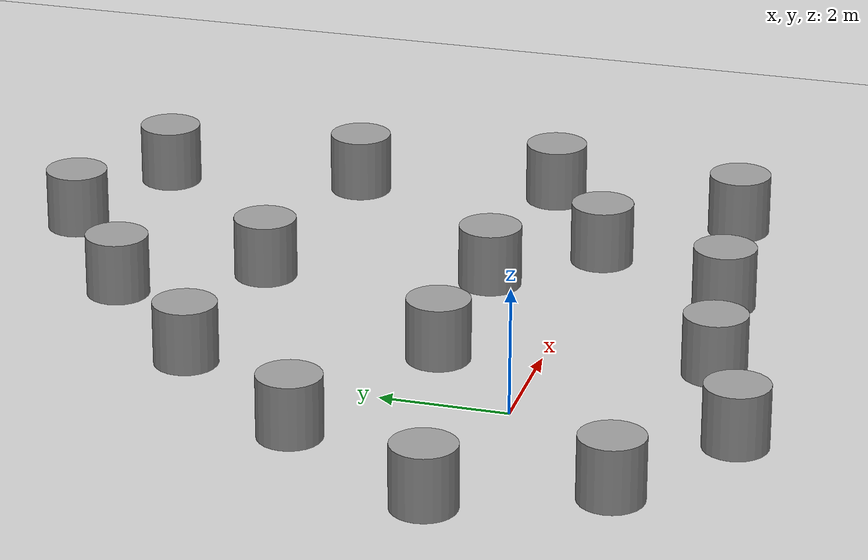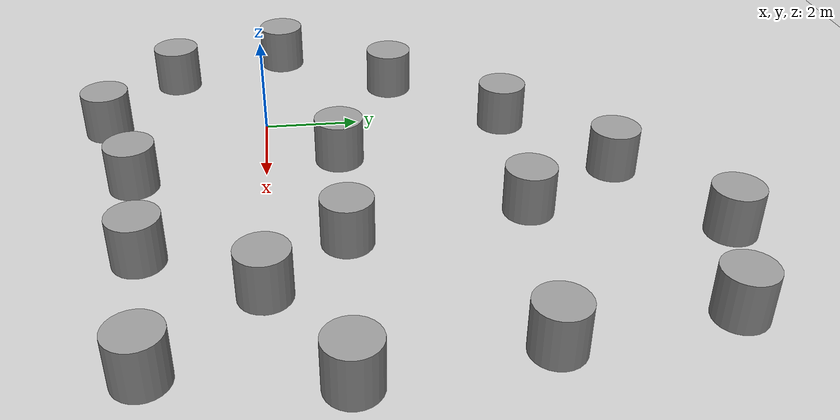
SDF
<sdf version="1.7">
 <world name="default">
  <model name="ground_plane">
   <static>1</static>
   <link name="link">
    <collision name="collision">
     <geometry><plane><normal>0 0 1</normal><size>100 100</size></plane></geometry>
     <surface><friction><ode><mu>100</mu><mu2>50</mu2></ode></friction></surface>
    </collision>
    <visual name="visual">
     <cast_shadows>0</cast_shadows>
     <geometry><plane><normal>0 0 1</normal><size>100 100</size></plane></geometry>
     <material>
      <script><uri>file://media/materials/scripts/gazebo.material</uri><name>Gazebo/Grey</name></script>
     </material>
    </visual>
   </link>
  </model>
  <scene><shadows>0</shadows><ambient>0.4 0.4 0.4 1</ambient><background>0.7 0.7 0.7 1</background></scene>
  <physics type="ode">
   <real_time_update_rate>1000</real_time_update_rate>
   <max_step_size>0.001</max_step_size>
   <real_time_factor>1</real_time_factor>
   <ode>
    <solver>
     <type>quick</type>
     <iters>150</iters>
     <precon_iters>0</precon_iters>
     <sor>1.4</sor>
     <use_dynamic_moi_rescaling>1</use_dynamic_moi_rescaling>
    </solver>
    <constraints>
     <cfm>1e-05</cfm>
     <erp>0.2</erp>
     <contact_max_correcting_vel>2000</contact_max_correcting_vel>
     <contact_surface_layer>0.01</contact_surface_layer>
    </constraints>
   </ode>
  </physics>
  <gravity>0 0 -9.8</gravity>
  <magnetic_field>6e-06 2.3e-05 -4.2e-05</magnetic_field>
  <atmosphere type="adiabatic"/>
  <spherical_coordinates>
   <surface_model>EARTH_WGS84</surface_model>
   <latitude_deg>0</latitude_deg>
   <longitude_deg>0</longitude_deg>
   <elevation>0</elevation>
   <heading_deg>0</heading_deg>
  </spherical_coordinates>
  <light name="user_spot_light_0" type="spot">
   <pose>-0.036872 0.039683 1 0 -0 0</pose>
   <diffuse>0.5 0.5 0.5 1</diffuse>
   <specular>0.1 0.1 0.1 1</specular>
   <direction>0 0 -1</direction>
   <attenuation>
    <range>20</range>
    <constant>0.5</constant>
    <linear>0.01</linear>
    <quadratic>0.001</quadratic>
   </attenuation>
   <cast_shadows>0</cast_shadows>
   <spot><inner_angle>0.6</inner_angle><outer_angle>1</outer_angle><falloff>1</falloff></spot>
  </light>
  <light name="user_spot_light_1" type="spot">
   <pose>2.87861 0.004116 1 0 -0 0</pose>
   <diffuse>0.5 0.5 0.5 1</diffuse>
   <specular>0.1 0.1 0.1 1</specular>
   <direction>0 0 -1</direction>
   <attenuation>
    <range>20</range>
    <constant>0.5</constant>
    <linear>0.01</linear>
    <quadratic>0.001</quadratic>
   </attenuation>
   <cast_shadows>0</cast_shadows>
   <spot><inner_angle>0.6</inner_angle><outer_angle>1</outer_angle><falloff>1</falloff></spot>
  </light>
  <light name="user_spot_light_2" type="spot">
   <pose>2.88062 2.93647 1 0 -0 0</pose>
   <diffuse>0.5 0.5 0.5 1</diffuse>
   <specular>0.1 0.1 0.1 1</specular>
   <direction>0 0 -1</direction>
   <attenuation>
    <range>20</range>
    <constant>0.5</constant>
    <linear>0.01</linear>
    <quadratic>0.001</quadratic>
   </attenuation>
   <cast_shadows>0</cast_shadows>
   <spot><inner_angle>0.6</inner_angle><outer_angle>1</outer_angle><falloff>1</falloff></spot>
  </light>
  <light name="user_spot_light_3" type="spot">
   <pose>5.74649 2.90156 1 0 -0 0</pose>
   <diffuse>0.5 0.5 0.5 1</diffuse>
   <specular>0.1 0.1 0.1 1</specular>
   <direction>0 0 -1</direction>
   <attenuation>
    <range>20</range>
    <constant>0.5</constant>
    <linear>0.01</linear>
    <quadratic>0.001</quadratic>
   </attenuation>
   <cast_shadows>0</cast_shadows>
   <spot><inner_angle>0.6</inner_angle><outer_angle>1</outer_angle><falloff>1</falloff></spot>
  </light>
  <light name="user_spot_light_4" type="spot">
   <pose>5.78224 5.86761 1 0 -0 0</pose>
   <diffuse>0.5 0.5 0.5 1</diffuse>
   <specular>0.1 0.1 0.1 1</specular>
   <direction>0 0 -1</direction>
   <attenuation>
    <range>20</range>
    <constant>0.5</constant>
    <linear>0.01</linear>
    <quadratic>0.001</quadratic>
   </attenuation>
   <cast_shadows>0</cast_shadows>
   <spot><inner_angle>0.6</inner_angle><outer_angle>1</outer_angle><falloff>1</falloff></spot>
  </light>
  <model name="unit_cylinder_0">
   <pose>4.52716 1.48696 0.499993 4e-06 4e-06 -0</pose>
   <link name="link">
    <inertial>
     <mass>1</mass>
     <inertia><ixx>0.145833</ixx><ixy>0</ixy><ixz>0</ixz><iyy>0.145833</iyy><iyz>0</iyz><izz>0.125</izz></inertia>
    </inertial>
    <collision name="collision">
     <geometry><cylinder><radius>0.5</radius><length>1</length></cylinder></geometry>
    </collision>
    <visual name="visual">
     <geometry><cylinder><radius>0.5</radius><length>1</length></cylinder></geometry>
     <material>
      <script><name>Gazebo/Grey</name><uri>file://media/materials/scripts/gazebo.material</uri></script>
     </material>
    </visual>
   </link>
  </model>
  <model name="unit_cylinder_1">
   <pose>1.5779 1.52254 0.499993 4e-06 4e-06 -0</pose>
   <link name="link">
    <inertial>
     <mass>1</mass>
     <inertia><ixx>0.145833</ixx><ixy>0</ixy><ixz>0</ixz><iyy>0.145833</iyy><iyz>0</iyz><izz>0.125</izz></inertia>
    </inertial>
    <collision name="collision">
     <geometry><cylinder><radius>0.5</radius><length>1</length></cylinder></geometry>
    </collision>
    <visual name="visual">
     <geometry><cylinder><radius>0.5</radius><length>1</length></cylinder></geometry>
     <material>
      <script><name>Gazebo/Grey</name><uri>file://media/materials/scripts/gazebo.material</uri></script>
     </material>
    </visual>
   </link>
  </model>
  <model name="unit_cylinder_2">
   <pose>5.90874 -0.013433 0.499993 4e-06 4e-06 -0</pose>
   <link name="link">
    <inertial>
     <mass>1</mass>
     <inertia><ixx>0.145833</ixx><ixy>0</ixy><ixz>0</ixz><iyy>0.145833</iyy><iyz>0</iyz><izz>0.125</izz></inertia>
    </inertial>
    <collision name="collision">
     <geometry><cylinder><radius>0.5</radius><length>1</length></cylinder></geometry>
    </collision>
    <visual name="visual">
     <geometry><cylinder><radius>0.5</radius><length>1</length></cylinder></geometry>
     <material>
      <script><name>Gazebo/Grey</name><uri>file://media/materials/scripts/gazebo.material</uri></script>
     </material>
    </visual>
   </link>
  </model>
  <model name="unit_cylinder_3">
   <pose>7.76541 4.58366 0.499993 4e-06 4e-06 -0</pose>
   <link name="link">
    <inertial>
     <mass>1</mass>
     <inertia><ixx>0.145833</ixx><ixy>0</ixy><ixz>0</ixz><iyy>0.145833</iyy><iyz>0</iyz><izz>0.125</izz></inertia>
    </inertial>
    <collision name="collision">
     <geometry><cylinder><radius>0.5</radius><length>1</length></cylinder></geometry>
    </collision>
    <visual name="visual">
     <geometry><cylinder><radius>0.5</radius><length>1</length></cylinder></geometry>
     <material>
      <script><name>Gazebo/Grey</name><uri>file://media/materials/scripts/gazebo.material</uri></script>
     </material>
    </visual>
   </link>
  </model>
  <model name="unit_cylinder_4">
   <pose>8.23067 1.31246 0.499993 4e-06 4e-06 -0</pose>
   <link name="link">
    <inertial>
     <mass>1</mass>
     <inertia><ixx>0.145833</ixx><ixy>0</ixy><ixz>0</ixz><iyy>0.145833</iyy><iyz>0</iyz><izz>0.125</izz></inertia>
    </inertial>
    <collision name="collision">
     <geometry><cylinder><radius>0.5</radius><length>1</length></cylinder></geometry>
    </collision>
    <visual name="visual">
     <geometry><cylinder><radius>0.5</radius><length>1</length></cylinder></geometry>
     <material>
      <script><name>Gazebo/Grey</name><uri>file://media/materials/scripts/gazebo.material</uri></script>
     </material>
    </visual>
   </link>
  </model>
  <model name="unit_cylinder_5">
   <pose>2.58514 7.04571 0.499993 4e-06 4e-06 -0</pose>
   <link name="link">
    <inertial>
     <mass>1</mass>
     <inertia><ixx>0.145833</ixx><ixy>0</ixy><ixz>0</ixz><iyy>0.145833</iyy><iyz>0</iyz><izz>0.125</izz></inertia>
    </inertial>
    <collision name="collision">
     <geometry><cylinder><radius>0.5</radius><length>1</length></cylinder></geometry>
    </collision>
    <visual name="visual">
     <geometry><cylinder><radius>0.5</radius><length>1</length></cylinder></geometry>
     <material>
      <script><name>Gazebo/Grey</name><uri>file://media/materials/scripts/gazebo.material</uri></script>
     </material>
    </visual>
   </link>
  </model>
  <model name="unit_cylinder_6">
   <pose>0.411614 5.16584 0.499993 4e-06 4e-06 -0</pose>
   <link name="link">
    <inertial>
     <mass>1</mass>
     <inertia><ixx>0.145833</ixx><ixy>0</ixy><ixz>0</ixz><iyy>0.145833</iyy><iyz>0</iyz><izz>0.125</izz></inertia>
    </inertial>
    <collision name="collision">
     <geometry><cylinder><radius>0.5</radius><length>1</length></cylinder></geometry>
    </collision>
    <visual name="visual">
     <geometry><cylinder><radius>0.5</radius><length>1</length></cylinder></geometry>
     <material>
      <script><name>Gazebo/Grey</name><uri>file://media/materials/scripts/gazebo.material</uri></script>
     </material>
    </visual>
   </link>
  </model>
  <model name="unit_cylinder_7">
   <pose>-1.59662 2.88309 0.499993 4e-06 4e-06 -0</pose>
   <link name="link">
    <inertial>
     <mass>1</mass>
     <inertia><ixx>0.145833</ixx><ixy>0</ixy><ixz>0</ixz><iyy>0.145833</iyy><iyz>0</iyz><izz>0.125</izz></inertia>
    </inertial>
    <collision name="collision">
     <geometry><cylinder><radius>0.5</radius><length>1</length></cylinder></geometry>
    </collision>
    <visual name="visual">
     <geometry><cylinder><radius>0.5</radius><length>1</length></cylinder></geometry>
     <material>
      <script><name>Gazebo/Grey</name><uri>file://media/materials/scripts/gazebo.material</uri></script>
     </material>
    </visual>
   </link>
  </model>
  <model name="unit_cylinder_8">
   <pose>2.17142 -2.62006 0.499993 4e-06 4e-06 -0</pose>
   <link name="link">
    <inertial>
     <mass>1</mass>
     <inertia><ixx>0.145833</ixx><ixy>0</ixy><ixz>0</ixz><iyy>0.145833</iyy><iyz>0</iyz><izz>0.125</izz></inertia>
    </inertial>
    <collision name="collision">
     <geometry><cylinder><radius>0.5</radius><length>1</length></cylinder></geometry>
    </collision>
    <visual name="visual">
     <geometry><cylinder><radius>0.5</radius><length>1</length></cylinder></geometry>
     <material>
      <script><name>Gazebo/Grey</name><uri>file://media/materials/scripts/gazebo.material</uri></script>
     </material>
    </visual>
   </link>
  </model>
  <model name="unit_cylinder_9">
   <pose>-2.28149 -2.05468 0.499993 4e-06 4e-06 -0</pose>
   <link name="link">
    <inertial>
     <mass>1</mass>
     <inertia><ixx>0.145833</ixx><ixy>0</ixy><ixz>0</ixz><iyy>0.145833</iyy><iyz>0</iyz><izz>0.125</izz></inertia>
    </inertial>
    <collision name="collision">
     <geometry><cylinder><radius>0.5</radius><length>1</length></cylinder></geometry>
    </collision>
    <visual name="visual">
     <geometry><cylinder><radius>0.5</radius><length>1</length></cylinder></geometry>
     <material>
      <script><name>Gazebo/Grey</name><uri>file://media/materials/scripts/gazebo.material</uri></script>
     </material>
    </visual>
   </link>
  </model>
  <model name="unit_cylinder_10">
   <pose>-0.162643 -3.40889 0.499993 4e-06 4e-06 -0</pose>
   <link name="link">
    <inertial>
     <mass>1</mass>
     <inertia><ixx>0.145833</ixx><ixy>0</ixy><ixz>0</ixz><iyy>0.145833</iyy><iyz>0</iyz><izz>0.125</izz></inertia>
    </inertial>
    <collision name="collision">
     <geometry><cylinder><radius>0.5</radius><length>1</length></cylinder></geometry>
    </collision>
    <visual name="visual">
     <geometry><cylinder><radius>0.5</radius><length>1</length></cylinder></geometry>
     <material>
      <script><name>Gazebo/Grey</name><uri>file://media/materials/scripts/gazebo.material</uri></script>
     </material>
    </visual>
   </link>
  </model>
  <model name="unit_cylinder_11">
   <pose>4.69383 -2.25463 0.499993 4e-06 4e-06 -0</pose>
   <link name="link">
    <inertial>
     <mass>1</mass>
     <inertia><ixx>0.145833</ixx><ixy>0</ixy><ixz>0</ixz><iyy>0.145833</iyy><iyz>0</iyz><izz>0.125</izz></inertia>
    </inertial>
    <collision name="collision">
     <geometry><cylinder><radius>0.5</radius><length>1</length></cylinder></geometry>
    </collision>
    <visual name="visual">
     <geometry><cylinder><radius>0.5</radius><length>1</length></cylinder></geometry>
     <material>
      <script><name>Gazebo/Grey</name><uri>file://media/materials/scripts/gazebo.material</uri></script>
     </material>
    </visual>
   </link>
  </model>
  <model name="unit_cylinder_12">
   <pose>7.7228 -1.89286 0.499993 4e-06 4e-06 -0</pose>
   <link name="link">
    <inertial>
     <mass>1</mass>
     <inertia><ixx>0.145833</ixx><ixy>0</ixy><ixz>0</ixz><iyy>0.145833</iyy><iyz>0</iyz><izz>0.125</izz></inertia>
    </inertial>
    <collision name="collision">
     <geometry><cylinder><radius>0.5</radius><length>1</length></cylinder></geometry>
    </collision>
    <visual name="visual">
     <geometry><cylinder><radius>0.5</radius><length>1</length></cylinder></geometry>
     <material>
      <script><name>Gazebo/Grey</name><uri>file://media/materials/scripts/gazebo.material</uri></script>
     </material>
    </visual>
   </link>
  </model>
  <model name="unit_cylinder_13">
   <pose>-3.24034 0.405325 0.499993 4e-06 4e-06 -0</pose>
   <link name="link">
    <inertial>
     <mass>1</mass>
     <inertia><ixx>0.145833</ixx><ixy>0</ixy><ixz>0</ixz><iyy>0.145833</iyy><iyz>0</iyz><izz>0.125</izz></inertia>
    </inertial>
    <collision name="collision">
     <geometry><cylinder><radius>0.5</radius><length>1</length></cylinder></geometry>
    </collision>
    <visual name="visual">
     <geometry><cylinder><radius>0.5</radius><length>1</length></cylinder></geometry>
     <material>
      <script><name>Gazebo/Grey</name><uri>file://media/materials/scripts/gazebo.material</uri></script>
     </material>
    </visual>
   </link>
  </model>
  <model name="unit_cylinder_14">
   <pose>7.29368 7.79279 0.499993 4e-06 4e-06 -0</pose>
   <link name="link">
    <inertial>
     <mass>1</mass>
     <inertia><ixx>0.145833</ixx><ixy>0</ixy><ixz>0</ixz><iyy>0.145833</iyy><iyz>0</iyz><izz>0.125</izz></inertia>
    </inertial>
    <collision name="collision">
     <geometry><cylinder><radius>0.5</radius><length>1</length></cylinder></geometry>
    </collision>
    <visual name="visual">
     <geometry><cylinder><radius>0.5</radius><length>1</length></cylinder></geometry>
     <material>
      <script><name>Gazebo/Grey</name><uri>file://media/materials/scripts/gazebo.material</uri></script>
     </material>
    </visual>
   </link>
  </model>
  <model name="unit_cylinder_15">
   <pose>4.97286 8.60714 0.499993 4e-06 4e-06 -0</pose>
   <link name="link">
    <inertial>
     <mass>1</mass>
     <inertia><ixx>0.145833</ixx><ixy>0</ixy><ixz>0</ixz><iyy>0.145833</iyy><iyz>0</iyz><izz>0.125</izz></inertia>
    </inertial>
    <collision name="collision">
     <geometry><cylinder><radius>0.5</radius><length>1</length></cylinder></geometry>
    </collision>
    <visual name="visual">
     <geometry><cylinder><radius>0.5</radius><length>1</length></cylinder></geometry>
     <material>
      <script><name>Gazebo/Grey</name><uri>file://media/materials/scripts/gazebo.material</uri></script>
     </material>
    </visual>
   </link>
  </model>
  <model name="unit_cylinder">
   <pose>3.8743 5.0125 0.499997 -4e-06 -4e-06 -0</pose>
   <link name="link">
    <inertial>
     <mass>1</mass>
     <inertia><ixx>0.145833</ixx><ixy>0</ixy><ixz>0</ixz><iyy>0.145833</iyy><iyz>0</iyz><izz>0.125</izz></inertia>
    </inertial>
    <collision name="collision">
     <geometry><cylinder><radius>0.5</radius><length>1</length></cylinder></geometry>
    </collision>
    <visual name="visual">
     <geometry><cylinder><radius>0.5</radius><length>1</length></cylinder></geometry>
     <material>
      <script><name>Gazebo/Grey</name><uri>file://media/materials/scripts/gazebo.material</uri></script>
     </material>
    </visual>
   </link>
  </model>
 </world>
</sdf>
